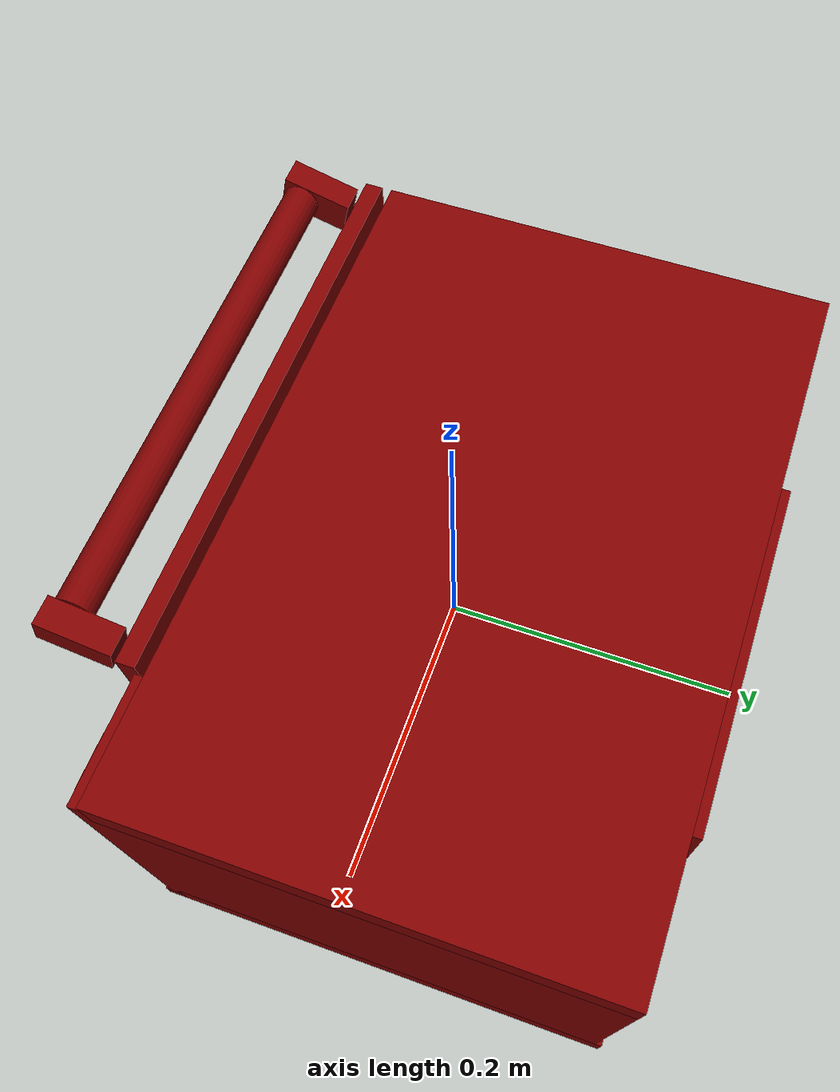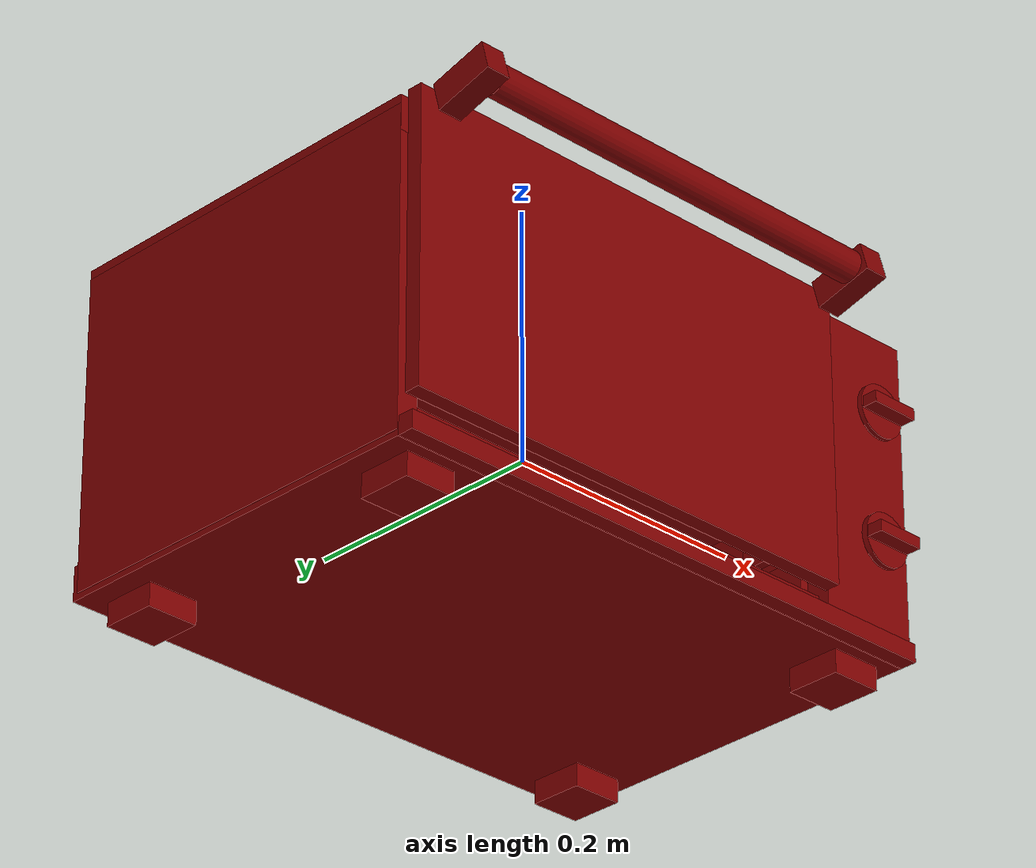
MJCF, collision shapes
<?xml version='1.0' encoding='UTF-8'?>
<mujoco model="model">
  <option timestep="0.002" gravity="0.0 0.0 -9.81"/>
  <compiler angle="radian"/>
  <asset>
    <mesh file="visuals/Body001.obj" name="Body001_vis"/>
    <mesh file="visuals/Door001.obj" name="Door001_vis"/>
    <mesh file="visuals/Door001_Clear.obj" name="Door001_Clear_vis"/>
    <mesh file="visuals/Knob001.obj" name="Knob001_vis"/>
    <mesh file="visuals/Knob002.obj" name="Knob002_vis"/>
    <mesh file="visuals/Shelf001.obj" name="Shelf001_vis"/>
    <texture file="visuals/T_BC001.png" name="Body001_material" type="2d"/>
    <material name="Body001_material" rgba="1 1 1 1.0" texture="Body001_material" shininess="3" specular="3"/>
    <texture file="visuals/T_BC001.png" name="Door001_material" type="2d"/>
    <material name="Door001_material" rgba="1 1 1 1.0" texture="Door001_material" shininess="0.141421377658844" specular="0.3103448502657381"/>
    <material name="Door001_Clear_material" rgba="0.015459578484296799 0.015459578484296799 0.015459578484296799 0.75" shininess="0.141421377658844" specular="0.3103448502657381"/>
    <texture file="visuals/T_BC001.png" name="Knob001_material" type="2d"/>
    <material name="Knob001_material" rgba="1 1 1 1.0" texture="Knob001_material" shininess="1" specular="1"/>
    <texture file="visuals/T_BC001.png" name="Knob002_material" type="2d"/>
    <material name="Knob002_material" rgba="1 1 1 1.0" texture="Knob002_material" shininess="1" specular="1"/>
    <texture file="visuals/T_BC001.png" name="Shelf001_material" type="2d"/>
    <material name="Shelf001_material" rgba="1 1 1 1.0" texture="Shelf001_material" shininess="15" specular="15"/>
  </asset>
  <default>
    <default class="visual">
      <geom conaffinity="0" contype="0" group="1" type="mesh"/>
    </default>
    <default class="collision">
      <geom group="0" rgba="0.5 0 0 0.5"/>
    </default>
    <default class="spawn">
      <geom group="0" rgba="1 1 1 0.5" contype="0" conaffinity="0"/>
      <site group="0" rgba="1 1 1 0.5"/>
    </default>
    <default class="region">
      <geom group="1" conaffinity="0" contype="0" rgba="0 1 0 0"/>
    </default>
  </default>
  <worldbody>
    <body>
      <body name="object">
        <geom mesh="Body001_vis" type="mesh" solimp="0.998 0.998 0.001" solref="0.001 1" friction="0.95 0.3 0.1" class="visual" material="Body001_material"/>
        <geom class="collision" type="box" pos="-0.227043 0.027358 0.004061" size="0.00845657754689455 0.15620672702789307 0.12157423049211502" quat="1.0 0.0 0.0 0.0" density="1000.0"/>
        <geom class="collision" type="box" pos="0.194882 0.023286 0.004061" size="0.04061771184206009 0.1602790206670761 0.12157423049211502" quat="1.0 0.0 0.0 0.0" density="1000.0"/>
        <geom class="collision" type="box" pos="0.000062 0.027358 0.118794" size="0.23543785512447357 0.1562086045742035 0.013556163758039474" quat="1.0 0.0 0.0 0.0" density="1000.0"/>
        <geom class="collision" type="box" pos="0.000410 0.029812 -0.108941" size="0.235089972615242 0.1583428680896759 0.013261904940009117" quat="1.0 0.0 0.0 0.0" density="1000.0"/>
        <geom class="collision" type="box" pos="0.003687 0.162253 -0.003344" size="0.2200160026550293 0.024211954325437546 0.11152558028697968" quat="1.0 0.0 0.0 0.0" density="1000.0"/>
        <geom class="collision" type="box" pos="0.199347 -0.098300 -0.131900" size="0.02043851651251316 0.021270979195833206 0.009028535336256027" quat="1.0 0.0 0.0 0.0" density="1000.0"/>
        <geom class="collision" type="box" pos="0.199347 0.150123 -0.131900" size="0.02043849043548107 0.021270979195833206 0.009028535336256027" quat="1.0 0.0 0.0 0.0" density="1000.0"/>
        <geom class="collision" type="box" pos="-0.197729 0.150123 -0.131900" size="0.020438464358448982 0.021270979195833206 0.009028535336256027" quat="1.0 0.0 0.0 0.0" density="1000.0"/>
        <geom class="collision" type="box" pos="-0.197729 -0.098300 -0.131900" size="0.020438436418771744 0.021270979195833206 0.009028535336256027" quat="1.0 0.0 0.0 0.0" density="1000.0"/>
        <geom class="collision" type="box" pos="0.002381 0.189568 -0.000732" size="0.12391333281993866 0.007120063994079828 0.07707659900188446" quat="1.0 0.0 0.0 0.0" density="1000.0"/>
        <geom class="collision" type="box" pos="0.000410 -0.135436 -0.115149" size="0.235089972615242 0.006472308654338121 0.00705310283228755" quat="1.0 0.0 0.0 0.0" density="1000.0"/>
        <geom class="collision" type="box" pos="-0.214986 0.003947 0.002088" size="0.003248039400205016 0.11949707567691803 0.015204918570816517" quat="1.0 0.0 0.0 0.0" density="1000.0"/>
        <geom class="collision" type="box" pos="-0.214986 0.003947 0.046909" size="0.0032480545341968536 0.11949707567691803 0.019182415679097176" quat="1.0 0.0 0.0 0.0" density="1000.0"/>
        <geom class="collision" type="box" pos="-0.214986 0.003947 -0.039732" size="0.003248039400205016 0.11949707567691803 0.015250167809426785" quat="1.0 0.0 0.0 0.0" density="1000.0"/>
        <geom class="collision" type="box" pos="-0.214986 0.003947 -0.079423" size="0.0032480545341968536 0.11949707567691803 0.016048287972807884" quat="1.0 0.0 0.0 0.0" density="1000.0"/>
        <geom class="collision" type="box" pos="0.152316 0.103404 0.002088" size="0.004900647792965174 0.02585107833147049 0.015204917639493942" quat="1.0 0.0 0.0 0.0" density="1000.0"/>
        <geom class="collision" type="box" pos="0.152316 0.103404 0.046596" size="0.0049006701447069645 0.02585107833147049 0.019816067069768906" quat="1.0 0.0 0.0 0.0" density="1000.0"/>
        <geom class="collision" type="box" pos="0.152316 0.103404 -0.039777" size="0.0049006701447069645 0.02585107833147049 0.015204917639493942" quat="1.0 0.0 0.0 0.0" density="1000.0"/>
        <geom class="collision" type="box" pos="0.152316 0.103404 -0.080266" size="0.0049006701447069645 0.02585107833147049 0.015204917639493942" quat="1.0 0.0 0.0 0.0" density="1000.0"/>
        <geom class="collision" type="box" pos="0.152316 -0.091946 0.002088" size="0.00490065710619092 0.02638694830238819 0.015204917639493942" quat="1.0 0.0 0.0 0.0" density="1000.0"/>
        <geom class="collision" type="box" pos="0.152316 -0.091946 0.046596" size="0.00490067433565855 0.02638694830238819 0.019816067069768906" quat="1.0 0.0 0.0 0.0" density="1000.0"/>
        <geom class="collision" type="box" pos="0.152316 -0.091946 -0.039777" size="0.004900655243545771 0.02638694830238819 0.015204917639493942" quat="1.0 0.0 0.0 0.0" density="1000.0"/>
        <geom class="collision" type="box" pos="0.152316 -0.091946 -0.080266" size="0.0049006701447069645 0.02638694830238819 0.015204917639493942" quat="1.0 0.0 0.0 0.0" density="1000.0"/>
        <body name="Door001">
          <joint axis="1.0 0.0 0.0" pos="-0.039193 -0.148036 -0.096158" limited="true" name="Door001_joint" range="0.0 1.5707963267948966" type="hinge" damping="1" frictionloss="1" armature=".01" stiffness="0.8" springref="-0.8"/>
          <geom mesh="Door001_vis" type="mesh" solimp="0.998 0.998 0.001" solref="0.001 1" friction="0.95 0.3 0.1" class="visual" material="Door001_material"/>
          <geom class="collision" type="box" pos="-0.041160 -0.141988 0.018925" size="0.1943398118019104 0.006128094159066677 0.11324569582939148" quat="1.0 0.0 0.0 0.0" density="1000.0"/>
          <geom class="collision" type="box" pos="-0.218745 -0.177442 0.126875" size="0.009599174372851849 0.023531947284936905 0.011573350057005882" quat="0.9916978478431702 -0.12859009206295013 -0.0 0.0" density="1000.0"/>
          <geom class="collision" type="box" pos="0.141572 -0.177442 0.126875" size="0.009599174372851849 0.023531947284936905 0.011573350057005882" quat="0.9916978478431702 -0.12859009206295013 -0.0 0.0" density="1000.0"/>
          <geom class="collision" type="cylinder" pos="-0.038598 -0.186595 0.129377" size="0.012113459408283234 0.16969875991344452" quat="0.4999999701976776 0.5 0.5 0.5" density="1000.0"/>
          <body name="Door001_Clear">
            <geom mesh="Door001_Clear_vis" type="mesh" solimp="0.998 0.998 0.001" solref="0.001 1" friction="0.95 0.3 0.1" class="visual" material="Door001_Clear_material"/>
            <geom class="collision" type="box" pos="-0.037991 -0.141813 0.008867" size="0.1620350033044815 0.0031526824459433556 0.07637986540794373" quat="1.0 0.0 0.0 0.0" density="1000.0"/>
          </body>
        </body>
        <body name="Knob001">
          <joint axis="0.0 1.0 0.0" pos="0.196710 -0.153035 0.054220" limited="true" name="Knob001_joint" range="0.0 5.410520681182422" type="hinge" damping="0.05" armature="0.001"/>
          <geom mesh="Knob001_vis" type="mesh" solimp="0.998 0.998 0.001" solref="0.001 1" friction="0.95 0.3 0.1" class="visual" material="Knob001_material"/>
          <geom class="collision" type="cylinder" pos="0.196710 -0.152172 0.054220" size="0.020568156614899635 0.0019050710834562778" quat="0.7071067094802856 0.7071068286895752 0.0 0.0" density="1000.0"/>
          <geom class="collision" type="box" pos="0.196710 -0.160710 0.054220" size="0.019587434828281403 0.006104535423219204 0.004412749316543341" quat="1.0 0.0 0.0 0.0" density="1000.0"/>
        </body>
        <body name="Knob002">
          <joint axis="0.0 1.0 0.0" pos="0.196710 -0.153035 -0.046636" limited="true" name="Knob002_joint" range="0.0 4.71238898038469" type="hinge" damping="0.05" armature="0.001"/>
          <geom mesh="Knob002_vis" type="mesh" solimp="0.998 0.998 0.001" solref="0.001 1" friction="0.95 0.3 0.1" class="visual" material="Knob002_material"/>
          <geom class="collision" type="cylinder" pos="0.196710 -0.152172 -0.046636" size="0.020568156614899635 0.0022563235834240913" quat="0.7071067094802856 0.7071068286895752 0.0 0.0" density="1000.0"/>
          <geom class="collision" type="box" pos="0.196710 -0.160710 -0.046636" size="0.019587434828281403 0.006104535423219204 0.004412749316543341" quat="1.0 0.0 0.0 0.0" density="1000.0"/>
        </body>
        <body name="Shelf001">
          <joint axis="0.0 -1.0 0.0" pos="-0.032229 0.004164 -0.020357" limited="true" name="Shelf001_joint" range="0.0 0.2" type="slide" damping="1" frictionloss="1" armature=".01" stiffness="0.05"/>
          <geom mesh="Shelf001_vis" type="mesh" solimp="0.998 0.998 0.001" solref="0.001 1" friction="0.95 0.3 0.1" class="visual" material="Shelf001_material"/>
          <geom class="collision" type="box" pos="-0.032229 0.004164 -0.020366" size="0.18294072151184082 0.10695970058441162 0.0017083315178751945" quat="1.0 0.0 0.0 0.0" density="1000.0"/>
        </body>
        <geom class="region" name="reg_int" type="box" pos="-0.032015 0.004067500000000002 0.005133000000000006" size="0.18706 0.1335665 0.10037499999999999"/>
        <geom class="region" name="reg_main" type="box" pos="0.0 0.0250895 -0.004289500000000002" size="0.2355 0.1732055 0.1366395"/>
      </body>
    </body>
  </worldbody>
  <actuator>
    <motor name="Door001_joint_actuator" joint="Door001_joint" gear="30"/>
    <motor name="Knob001_joint_actuator" joint="Knob001_joint" gear="10"/>
    <motor name="Knob002_joint_actuator" joint="Knob002_joint" gear="10"/>
    <motor name="Shelf001_joint_actuator" joint="Shelf001_joint" gear="10"/>
  </actuator>
</mujoco>
